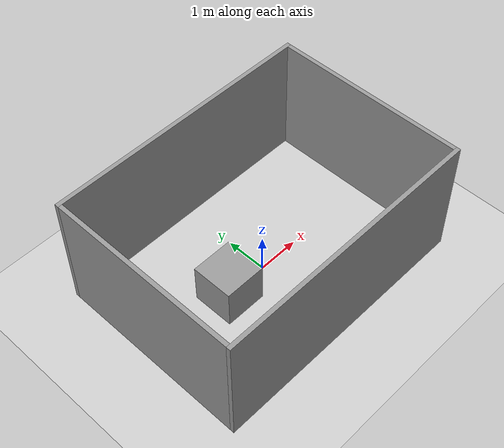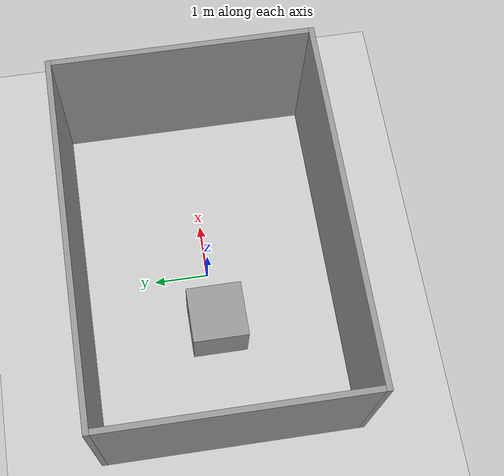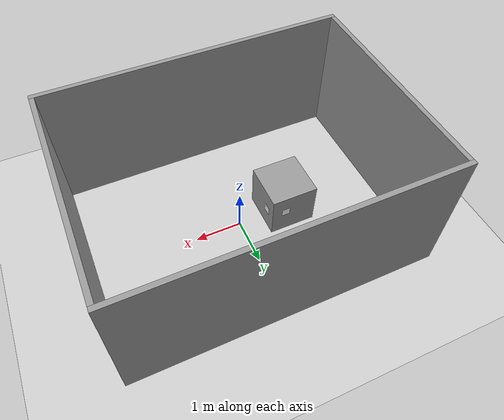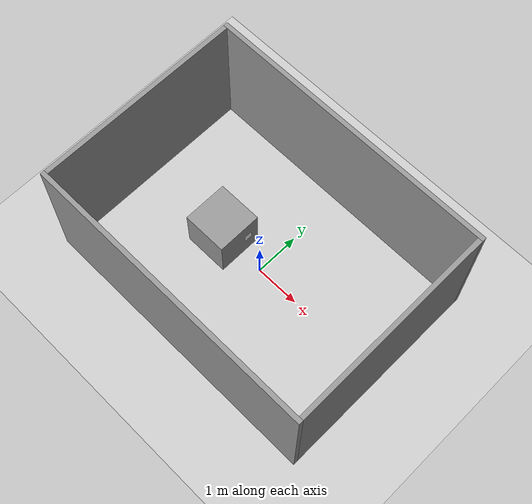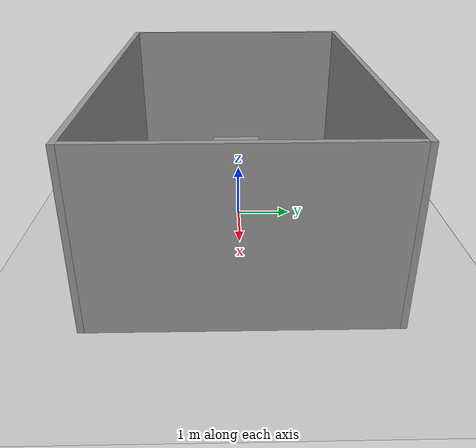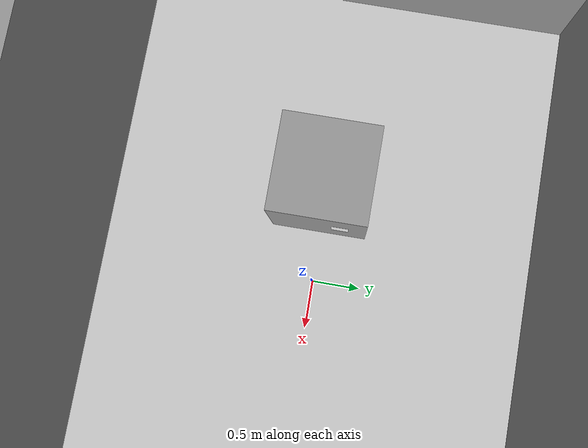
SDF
<sdf version="1.7">
 <world name="default">
  <plugin name="gazebo_ros_state" filename="libgazebo_ros_state.so">
   <ros><namespace>/gazebo</namespace></ros>
  </plugin>
  <light name="sun" type="directional">
   <pose>0 0 10 0 -0 0</pose>
   <diffuse>0.8 0.8 0.8 1</diffuse>
   <specular>0.2 0.2 0.2 1</specular>
   <attenuation>
    <range>1000</range>
    <constant>0.9</constant>
    <linear>0.01</linear>
    <quadratic>0.001</quadratic>
   </attenuation>
   <direction>-0.5 0.1 -0.9</direction>
   <spot><inner_angle>0</inner_angle><outer_angle>0</outer_angle><falloff>0</falloff></spot>
  </light>
  <model name="ground_plane">
   <static>1</static>
   <link name="link">
    <collision name="collision">
     <geometry><plane><normal>0 0 1</normal><size>100 100</size></plane></geometry>
     <surface>
      <contact><collide_bitmask>65535</collide_bitmask></contact>
      <friction><ode><mu>100</mu><mu2>50</mu2></ode></friction>
     </surface>
    </collision>
    <visual name="visual">
     <cast_shadows>0</cast_shadows>
     <geometry><plane><normal>0 0 1</normal><size>100 100</size></plane></geometry>
     <material>
      <script><uri>file://media/materials/scripts/gazebo.material</uri><name>Gazebo/Grey</name></script>
     </material>
    </visual>
   </link>
  </model>
  <gravity>0 0 -9.8</gravity>
  <magnetic_field>6e-06 2.3e-05 -4.2e-05</magnetic_field>
  <atmosphere type="adiabatic"/>
  <physics type="ode">
   <max_step_size>0.001</max_step_size>
   <real_time_factor>1</real_time_factor>
   <real_time_update_rate>1000</real_time_update_rate>
  </physics>
  <scene><ambient>0.4 0.4 0.4 1</ambient><background>0.7 0.7 0.7 1</background><shadows>1</shadows></scene>
  <spherical_coordinates>
   <surface_model>EARTH_WGS84</surface_model>
   <latitude_deg>0</latitude_deg>
   <longitude_deg>0</longitude_deg>
   <elevation>0</elevation>
   <heading_deg>0</heading_deg>
  </spherical_coordinates>
  <model name="walls2">
   <link name="link_0">
    <inertial>
     <mass>1</mass>
     <inertia>
      <ixx>0.166667</ixx>
      <ixy>0</ixy>
      <ixz>0</ixz>
      <iyy>0.166667</iyy>
      <iyz>0</iyz>
      <izz>0.166667</izz>
     </inertia>
    </inertial>
    <visual name="ModelPreview_0::link_0::visual_1">
     <pose>0 -2.32 1 0 -0 0</pose>
     <geometry><box><size>6.55 0.1 2.95</size></box></geometry>
     <material>
      <lighting>1</lighting>
      <script><uri>file://media/materials/scripts/gazebo.material</uri><name>Gazebo/Grey</name></script>
      <shader type="pixel"><normal_map>__default__</normal_map></shader>
      <ambient>0.3 0.3 0.3 1</ambient>
      <diffuse>0.7 0.7 0.7 1</diffuse>
      <specular>0.01 0.01 0.01 1</specular>
      <emissive>0 0 0 1</emissive>
     </material>
    </visual>
    <visual name="ModelPreview_0::link_0::visual_3">
     <pose>-3.225 0 1 0 -0 0</pose>
     <geometry><box><size>0.1 4.54 2.95</size></box></geometry>
     <material>
      <lighting>1</lighting>
      <script><uri>file://media/materials/scripts/gazebo.material</uri><name>Gazebo/Grey</name></script>
      <shader type="pixel"><normal_map>__default__</normal_map></shader>
      <ambient>0.3 0.3 0.3 1</ambient>
      <diffuse>0.7 0.7 0.7 1</diffuse>
      <specular>0.01 0.01 0.01 1</specular>
      <emissive>0 0 0 1</emissive>
     </material>
    </visual>
    <visual name="ModelPreview_0::link_0::visual_2">
     <pose>3.225 0 1 0 -0 0</pose>
     <geometry><box><size>0.1 4.54 2.95</size></box></geometry>
     <material>
      <lighting>1</lighting>
      <script><uri>file://media/materials/scripts/gazebo.material</uri><name>Gazebo/Grey</name></script>
      <shader type="pixel"><normal_map>__default__</normal_map></shader>
      <ambient>0.3 0.3 0.3 1</ambient>
      <diffuse>0.7 0.7 0.7 1</diffuse>
      <specular>0.01 0.01 0.01 1</specular>
      <emissive>0 0 0 1</emissive>
     </material>
    </visual>
    <visual name="visual">
     <pose>0 2.32 1 0 -0 0</pose>
     <geometry><box><size>6.55 0.1 2.95</size></box></geometry>
     <material>
      <lighting>1</lighting>
      <script><uri>file://media/materials/scripts/gazebo.material</uri><name>Gazebo/Grey</name></script>
      <shader type="pixel"><normal_map>__default__</normal_map></shader>
      <ambient>0.3 0.3 0.3 1</ambient>
      <diffuse>0.7 0.7 0.7 1</diffuse>
      <specular>0.01 0.01 0.01 1</specular>
      <emissive>0 0 0 1</emissive>
     </material>
    </visual>
    <collision name="collision">
     <pose>0 2.32 1 0 -0 0</pose>
     <geometry><box><size>6.55 0.1 2.95</size></box></geometry>
     <surface>
      <friction>
       <ode><mu>1</mu><mu2>1</mu2><fdir1>0 0 0</fdir1><slip1>0</slip1><slip2>0</slip2></ode>
       <torsional>
        <coefficient>1</coefficient>
        <patch_radius>0</patch_radius>
        <surface_radius>0</surface_radius>
        <use_patch_radius>1</use_patch_radius>
        <ode><slip>0</slip></ode>
       </torsional>
      </friction>
      <bounce><restitution_coefficient>0</restitution_coefficient><threshold>1e+06</threshold></bounce>
      <contact>
       <collide_without_contact>0</collide_without_contact>
       <collide_without_contact_bitmask>1</collide_without_contact_bitmask>
       <collide_bitmask>1</collide_bitmask>
       <ode>
        <soft_cfm>0</soft_cfm>
        <soft_erp>0.2</soft_erp>
        <kp>1e+13</kp>
        <kd>1</kd>
        <max_vel>0.01</max_vel>
        <min_depth>0</min_depth>
       </ode>
       <bullet>
        <split_impulse>1</split_impulse>
        <split_impulse_penetration_threshold>-0.01</split_impulse_penetration_threshold>
        <soft_cfm>0</soft_cfm>
        <soft_erp>0.2</soft_erp>
        <kp>1e+13</kp>
        <kd>1</kd>
       </bullet>
      </contact>
     </surface>
    </collision>
    <collision name="collision_1">
     <pose>0 -2.32 1 0 -0 0</pose>
     <geometry><box><size>6.55 0.1 2.95</size></box></geometry>
     <surface>
      <friction>
       <ode><mu>1</mu><mu2>1</mu2><fdir1>0 0 0</fdir1><slip1>0</slip1><slip2>0</slip2></ode>
       <torsional>
        <coefficient>1</coefficient>
        <patch_radius>0</patch_radius>
        <surface_radius>0</surface_radius>
        <use_patch_radius>1</use_patch_radius>
        <ode><slip>0</slip></ode>
       </torsional>
      </friction>
      <bounce><restitution_coefficient>0</restitution_coefficient><threshold>1e+06</threshold></bounce>
      <contact>
       <collide_without_contact>0</collide_without_contact>
       <collide_without_contact_bitmask>1</collide_without_contact_bitmask>
       <collide_bitmask>1</collide_bitmask>
       <ode>
        <soft_cfm>0</soft_cfm>
        <soft_erp>0.2</soft_erp>
        <kp>1e+13</kp>
        <kd>1</kd>
        <max_vel>0.01</max_vel>
        <min_depth>0</min_depth>
       </ode>
       <bullet>
        <split_impulse>1</split_impulse>
        <split_impulse_penetration_threshold>-0.01</split_impulse_penetration_threshold>
        <soft_cfm>0</soft_cfm>
        <soft_erp>0.2</soft_erp>
        <kp>1e+13</kp>
        <kd>1</kd>
       </bullet>
      </contact>
     </surface>
    </collision>
    <collision name="collision_2">
     <pose>3.225 0 1 0 -0 0</pose>
     <geometry><box><size>0.1 4.54 2.95</size></box></geometry>
     <surface>
      <friction>
       <ode><mu>1</mu><mu2>1</mu2><fdir1>0 0 0</fdir1><slip1>0</slip1><slip2>0</slip2></ode>
       <torsional>
        <coefficient>1</coefficient>
        <patch_radius>0</patch_radius>
        <surface_radius>0</surface_radius>
        <use_patch_radius>1</use_patch_radius>
        <ode><slip>0</slip></ode>
       </torsional>
      </friction>
      <bounce><restitution_coefficient>0</restitution_coefficient><threshold>1e+06</threshold></bounce>
      <contact>
       <collide_without_contact>0</collide_without_contact>
       <collide_without_contact_bitmask>1</collide_without_contact_bitmask>
       <collide_bitmask>1</collide_bitmask>
       <ode>
        <soft_cfm>0</soft_cfm>
        <soft_erp>0.2</soft_erp>
        <kp>1e+13</kp>
        <kd>1</kd>
        <max_vel>0.01</max_vel>
        <min_depth>0</min_depth>
       </ode>
       <bullet>
        <split_impulse>1</split_impulse>
        <split_impulse_penetration_threshold>-0.01</split_impulse_penetration_threshold>
        <soft_cfm>0</soft_cfm>
        <soft_erp>0.2</soft_erp>
        <kp>1e+13</kp>
        <kd>1</kd>
       </bullet>
      </contact>
     </surface>
    </collision>
    <collision name="collision_3">
     <pose>-3.225 0 1 0 -0 0</pose>
     <geometry><box><size>0.1 4.54 2.95</size></box></geometry>
     <surface>
      <friction>
       <ode><mu>1</mu><mu2>1</mu2><fdir1>0 0 0</fdir1><slip1>0</slip1><slip2>0</slip2></ode>
       <torsional>
        <coefficient>1</coefficient>
        <patch_radius>0</patch_radius>
        <surface_radius>0</surface_radius>
        <use_patch_radius>1</use_patch_radius>
        <ode><slip>0</slip></ode>
       </torsional>
      </friction>
      <bounce><restitution_coefficient>0</restitution_coefficient><threshold>1e+06</threshold></bounce>
      <contact>
       <collide_without_contact>0</collide_without_contact>
       <collide_without_contact_bitmask>1</collide_without_contact_bitmask>
       <collide_bitmask>1</collide_bitmask>
       <ode>
        <soft_cfm>0</soft_cfm>
        <soft_erp>0.2</soft_erp>
        <kp>1e+13</kp>
        <kd>1</kd>
        <max_vel>0.01</max_vel>
        <min_depth>0</min_depth>
       </ode>
       <bullet>
        <split_impulse>1</split_impulse>
        <split_impulse_penetration_threshold>-0.01</split_impulse_penetration_threshold>
        <soft_cfm>0</soft_cfm>
        <soft_erp>0.2</soft_erp>
        <kp>1e+13</kp>
        <kd>1</kd>
       </bullet>
      </contact>
     </surface>
    </collision>
   </link>
   <static>1</static>
   <pose>0 0 0.5 0 -0 0</pose>
  </model>
  <model name="unit_box">
   <pose>-1.0398 -0.024212 0.499995 1e-05 -0 0.00013</pose>
   <link name="link">
    <inertial>
     <mass>1</mass>
     <inertia>
      <ixx>0.166667</ixx>
      <ixy>0</ixy>
      <ixz>0</ixz>
      <iyy>0.166667</iyy>
      <iyz>0</iyz>
      <izz>0.166667</izz>
     </inertia>
    </inertial>
    <collision name="collision"><geometry><box><size>1 1 1</size></box></geometry></collision>
    <visual name="visual">
     <geometry><box><size>1 1 1</size></box></geometry>
     <material>
      <script><name>Gazebo/Grey</name><uri>file://media/materials/scripts/gazebo.material</uri></script>
     </material>
    </visual>
   </link>
  </model>
  <model name="marker_0">
   <link name="marker">
    <visual name="visual">
     <geometry><box><size>0.1778 0.1778 1e-05</size></box></geometry>
     <material>
      <script>
       <uri>model://marker_0/materials/scripts</uri>
       <uri>model://marker_0/materials/textures</uri>
       <name>ArucoVisualMarker0/Marker</name>
      </script>
      <ambient>1 1 1 1</ambient>
      <diffuse>1 1 1 1</diffuse>
      <specular>0 0 0 1</specular>
      <emissive>1 1 1 0</emissive>
      <shader type="vertex"><normal_map>__default__</normal_map></shader>
     </material>
    </visual>
    <collision name="collision"><geometry><box><size>0.1778 0.1778 1e-05</size></box></geometry></collision>
   </link>
   <link name="marker_pad">
    <pose relative_to="marker">0 0 -0.001 0 -0 0</pose>
    <visual name="visual">
     <geometry><box><size>0.1778 0.1778 1e-05</size></box></geometry>
     <material>
      <lighting>1</lighting>
      <script><uri>file://media/materials/scripts/gazebo.material</uri><name>Gazebo/White</name></script>
      <ambient>0.3 0.3 0.3 1</ambient>
      <diffuse>0.7 0.7 0.7 1</diffuse>
      <specular>0.01 0.01 0.01 1</specular>
      <emissive>1 1 1 0</emissive>
      <shader type="vertex"><normal_map>__default__</normal_map></shader>
     </material>
    </visual>
    <collision name="collision"><geometry><box><size>0.1778 0.1778 1e-05</size></box></geometry></collision>
   </link>
   <joint name="marker_JOINT_marker_pad" type="revolute">
    <parent>marker</parent>
    <child>marker_pad</child>
    <axis>
     <xyz>0 0 1</xyz>
     <limit><upper>0</upper><lower>0</lower></limit>
     <dynamics><spring_reference>0</spring_reference><spring_stiffness>0</spring_stiffness></dynamics>
    </axis>
   </joint>
   <static>1</static>
   <pose>-0.535188 0.204469 0.515594 0.326527 1.52884 0.325193</pose>
  </model>
  <model name="marker_1">
   <link name="marker">
    <visual name="visual">
     <geometry><box><size>0.1778 0.1778 1e-05</size></box></geometry>
     <material>
      <script>
       <uri>model://marker_1/materials/scripts</uri>
       <uri>model://marker_1/materials/textures</uri>
       <name>ArucoVisualMarker1/Marker</name>
      </script>
      <ambient>1 1 1 1</ambient>
      <diffuse>1 1 1 1</diffuse>
      <specular>0 0 0 1</specular>
      <emissive>1 1 1 0</emissive>
      <shader type="vertex"><normal_map>__default__</normal_map></shader>
     </material>
    </visual>
    <collision name="collision"><geometry><box><size>0.1778 0.1778 1e-05</size></box></geometry></collision>
   </link>
   <link name="marker_pad">
    <pose relative_to="marker">0 0 -0.001 0 -0 0</pose>
    <visual name="visual">
     <geometry><box><size>0.1778 0.1778 1e-05</size></box></geometry>
     <material>
      <lighting>1</lighting>
      <script><uri>file://media/materials/scripts/gazebo.material</uri><name>Gazebo/White</name></script>
      <ambient>0.3 0.3 0.3 1</ambient>
      <diffuse>0.7 0.7 0.7 1</diffuse>
      <specular>0.01 0.01 0.01 1</specular>
      <emissive>1 1 1 0</emissive>
      <shader type="vertex"><normal_map>__default__</normal_map></shader>
     </material>
    </visual>
    <collision name="collision"><geometry><box><size>0.1778 0.1778 1e-05</size></box></geometry></collision>
   </link>
   <joint name="marker_JOINT_marker_pad" type="revolute">
    <parent>marker</parent>
    <child>marker_pad</child>
    <axis>
     <xyz>0 0 1</xyz>
     <limit><upper>0</upper><lower>0</lower></limit>
     <dynamics><spring_reference>0</spring_reference><spring_stiffness>0</spring_stiffness></dynamics>
    </axis>
   </joint>
   <static>1</static>
   <pose>-0.847694 0.478086 0.577354 -1.58503 1.55451 -2e-06</pose>
  </model>
 </world>
</sdf>
